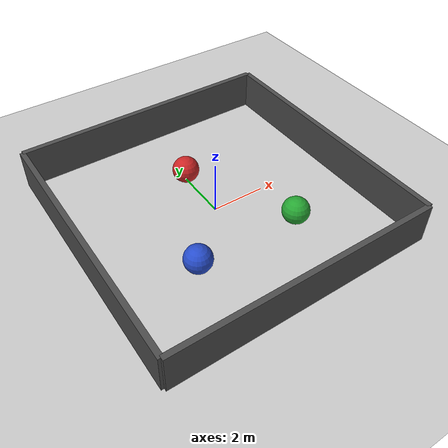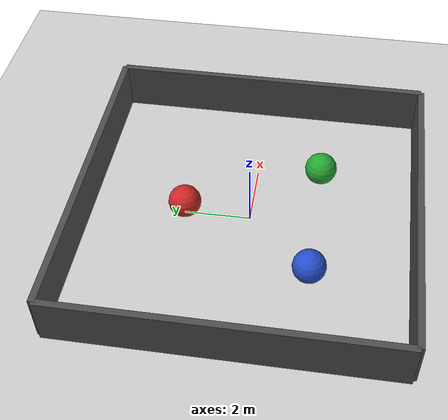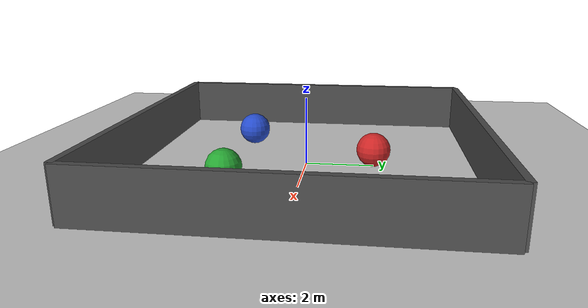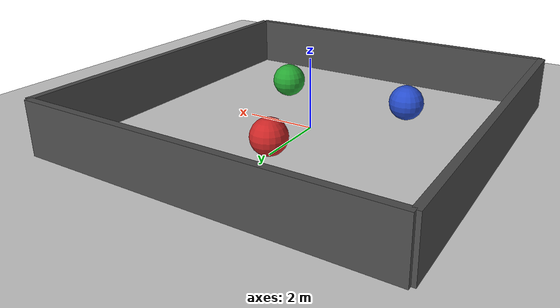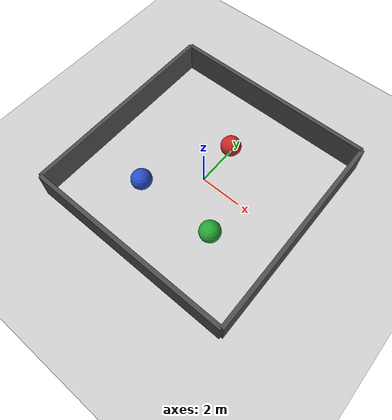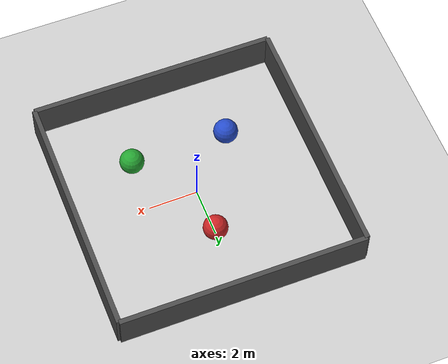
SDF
<?xml version="1.0" ?>
<sdf version="1.4">
  <world name="default">
    <include>
      <uri>model://ground_plane</uri>
    </include>
    <include>
      <uri>model://sun</uri>
    </include>

    <model name="spheres">
      <plugin name="model_push" filename="libmodel_push.so"/>
      <link name='sphere_1'>
        <pose>0 2 0.5 0 0 0</pose>
        <collision name='collision'>
          <geometry>
            <sphere>
              <radius>0.5</radius>
            </sphere>
          </geometry>
        </collision>
        <visual name='visual'>
          <geometry>
            <sphere>
              <radius>0.5</radius>
            </sphere>
          </geometry>
          <material>
            <script>
              <uri>file://media/materials/scripts/gazebo.material</uri>
              <name>Gazebo/Red</name>
            </script>
          </material>
        </visual>

      </link>
      <link name='sphere_2'>
        <pose>-2 -2 0.5 0 0 0</pose>
        <collision name='collision'>
          <geometry>
            <sphere>
              <radius>0.5</radius>
            </sphere>
          </geometry>
        </collision>
        <visual name='visual'>
          <geometry>
            <sphere>
              <radius>0.5</radius>
            </sphere>
          </geometry>
          <material>
            <script>
              <uri>file://media/materials/scripts/gazebo.material</uri>
              <name>Gazebo/Blue</name>
            </script>
          </material>
        </visual>
      </link>
      <link name='sphere_3'>
        <pose>2 -2 0.5 0 0 0</pose>
        <collision name='collision'>
          <geometry>
            <sphere>
              <radius>0.5</radius>
            </sphere>
          </geometry>
        </collision>
        <visual name='visual'>
          <geometry>
            <sphere>
              <radius>0.5</radius>
            </sphere>
          </geometry>
          <material>
            <script>
              <uri>file://media/materials/scripts/gazebo.material</uri>
              <name>Gazebo/Green</name>
            </script>
          </material>
        </visual>
      </link>
    </model>

    <model name="closed_room">
      <link name="Wall_1">
        <collision name="Wall_1_Collision">
          <geometry>
            <box>
              <size>10 0.2 1.5</size>
            </box>
          </geometry>
          <pose>0 0 0.75 0 -0 0</pose>
        </collision>
        <visual name="Wall_1_Visual">
          <pose>0 0 0.75 0 -0 0</pose>
          <geometry>
            <box>
              <size>10 0.2 1.5</size>
            </box>
          </geometry>
          <material>
            <script>
              <uri>file://media/materials/scripts/gazebo.material</uri>
              <name>Gazebo/DarkGrey</name>
            </script>
          </material>
        </visual>
        <velocity_decay>
          <linear>0</linear>
          <angular>0</angular>
        </velocity_decay>
        <pose>0 -5 0 0 0 0</pose>
      </link>
      <link name="Wall_2">
        <collision name="Wall_2_Collision">
          <geometry>
            <box>
              <size>10 0.2 1.5</size>
            </box>
          </geometry>
          <pose>0 0 0.75 0 -0 0</pose>
        </collision>
        <visual name="Wall_2_Visual">
          <pose>0 0 0.75 0 -0 0</pose>
          <geometry>
            <box>
              <size>10 0.2 1.5</size>
            </box>
          </geometry>
          <material>
            <script>
              <uri>file://media/materials/scripts/gazebo.material</uri>
              <name>Gazebo/DarkGrey</name>
            </script>
          </material>
        </visual>
        <velocity_decay>
          <linear>0</linear>
          <angular>0</angular>
        </velocity_decay>
        <pose>5 0 0 0 0 1.5708</pose>
      </link>
      <link name="Wall_3">
        <collision name="Wall_3_Collision">
          <geometry>
            <box>
              <size>10 0.2 1.5</size>
            </box>
          </geometry>
          <pose>0 0 0.75 0 -0 0</pose>
        </collision>
        <visual name="Wall_3_Visual">
          <pose>0 0 0.75 0 -0 0</pose>
          <geometry>
            <box>
              <size>10 0.2 1.5</size>
            </box>
          </geometry>
          <material>
            <script>
              <uri>file://media/materials/scripts/gazebo.material</uri>
              <name>Gazebo/DarkGrey</name>
            </script>
          </material>
        </visual>
        <velocity_decay>
          <linear>0</linear>
          <angular>0</angular>
        </velocity_decay>
        <pose>0 5 0 0 -0 -3.14159</pose>
      </link>
      <link name="Wall_4">
        <collision name="Wall_4_Collision">
          <geometry>
            <box>
              <size>10 0.2 1.5</size>
            </box>
          </geometry>
          <pose>0 0 0.75 0 -0 0</pose>
        </collision>
        <visual name="Wall_4_Visual">
          <pose>0 0 0.75 0 -0 0</pose>
          <geometry>
            <box>
              <size>10 0.2 1.5</size>
            </box>
          </geometry>
          <material>
            <script>
              <uri>file://media/materials/scripts/gazebo.material</uri>
              <name>Gazebo/DarkGrey</name>
            </script>
          </material>
        </visual>
        <velocity_decay>
          <linear>0</linear>
          <angular>0</angular>
        </velocity_decay>
        <pose>-5 0 0 0 0 -1.5708</pose>
      </link>
      <static>1</static>
    </model>
  </world>
</sdf>
